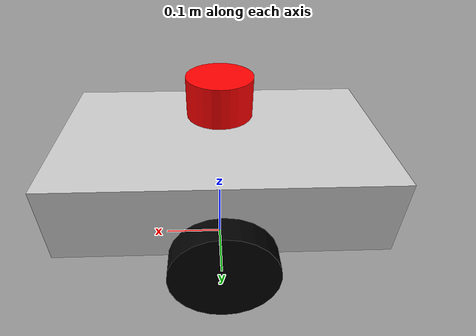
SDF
<?xml version="1.0" ?>
<sdf version="1.9">
  <model name="mobile_robot">
    <pose>0 0 0.16 0 0 0</pose>

    <link name="base_link">
      <inertial>
        <mass>2.0</mass>
        <inertia>
          <ixx>0.05</ixx>
          <iyy>0.05</iyy>
          <izz>0.05</izz>
        </inertia>
      </inertial>

      <collision name="base_collision">
        <geometry>
          <box>
            <size>0.5 0.3 0.12</size>
          </box>
        </geometry>
      </collision>

      <visual name="base_visual">
        <geometry>
          <box>
            <size>0.5 0.3 0.12</size>
          </box>
        </geometry>
        <material>
          <diffuse>0.8 0.8 0.8 1</diffuse>
        </material>
      </visual>
    </link>

    <link name="left_wheel">
      <pose>0 0.18 -0.06 1.5708 0 0</pose>
      <inertial>
        <mass>0.5</mass>
        <inertia>
          <ixx>0.001</ixx>
          <iyy>0.001</iyy>
          <izz>0.001</izz>
        </inertia>
      </inertial>

      <collision name="left_wheel_collision">
        <geometry>
          <cylinder>
            <radius>0.08</radius>
            <length>0.04</length>
          </cylinder>
        </geometry>
      </collision>

      <visual name="left_wheel_visual">
        <geometry>
          <cylinder>
            <radius>0.08</radius>
            <length>0.04</length>
          </cylinder>
        </geometry>
        <material>
          <diffuse>0 0 0 1</diffuse>
        </material>
      </visual>
    </link>

    <link name="right_wheel">
      <pose>0 -0.18 -0.06 1.5708 0 0</pose>
      <inertial>
        <mass>0.5</mass>
        <inertia>
          <ixx>0.001</ixx>
          <iyy>0.001</iyy>
          <izz>0.001</izz>
        </inertia>
      </inertial>

      <collision name="right_wheel_collision">
        <geometry>
          <cylinder>
            <radius>0.08</radius>
            <length>0.04</length>
          </cylinder>
        </geometry>
      </collision>

      <visual name="right_wheel_visual">
        <geometry>
          <cylinder>
            <radius>0.08</radius>
            <length>0.04</length>
          </cylinder>
        </geometry>
        <material>
          <diffuse>0 0 0 1</diffuse>
        </material>
      </visual>
    </link>

    <link name="lidar_link">
      <pose>0 0 0.12 0 0 0</pose>
      <visual name="lidar_visual">
        <geometry>
          <cylinder>
            <radius>0.05</radius>
            <length>0.06</length>
          </cylinder>
        </geometry>
        <material>
          <diffuse>1 0 0 1</diffuse>
        </material>
      </visual>
    </link>

    <joint name="left_wheel_joint" type="revolute">
      <parent>base_link</parent>
      <child>left_wheel</child>
      <axis>
        <xyz>0 0 1</xyz>
      </axis>
    </joint>

    <joint name="right_wheel_joint" type="revolute">
      <parent>base_link</parent>
      <child>right_wheel</child>
      <axis>
        <xyz>0 0 1</xyz>
      </axis>
    </joint>

    <joint name="lidar_joint" type="fixed">
      <parent>base_link</parent>
      <child>lidar_link</child>
    </joint>

    <plugin name="diff_drive" filename="gz-sim-diff-drive-system">
      <left_joint>left_wheel_joint</left_joint>
      <right_joint>right_wheel_joint</right_joint>
      <wheel_separation>0.36</wheel_separation>
      <wheel_radius>0.08</wheel_radius>
      <topic>/cmd_vel</topic>
      <max_linear_velocity>1.0</max_linear_velocity>
      <max_angular_velocity>1.0</max_angular_velocity>
      <publish_odom>true</publish_odom>
    </plugin>

  </model>
</sdf>
